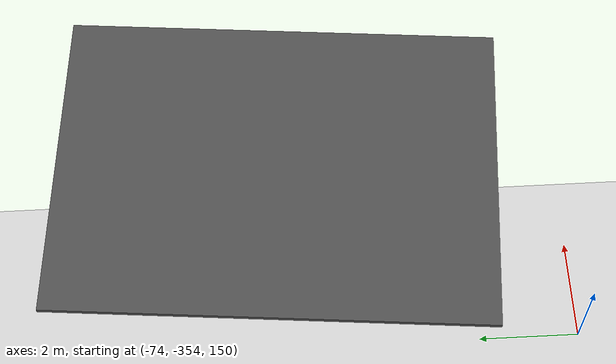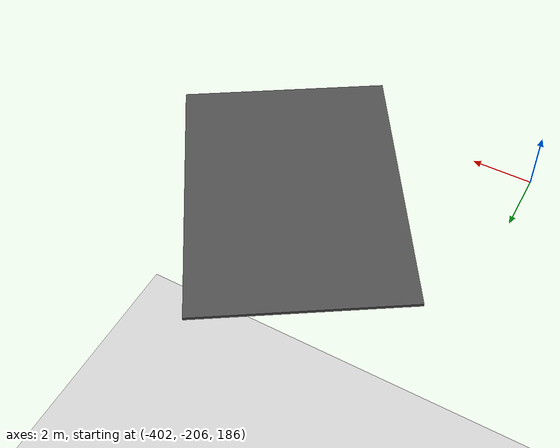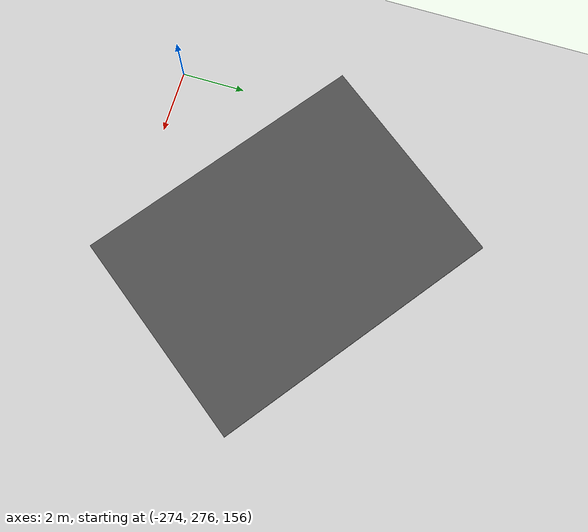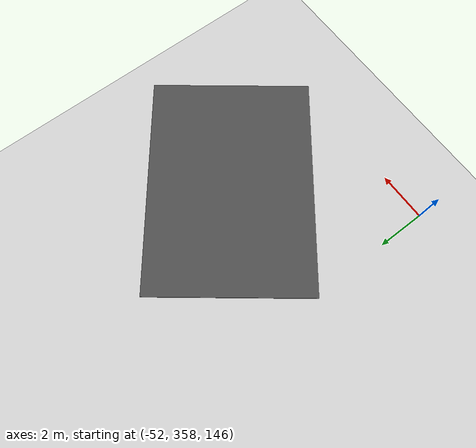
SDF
<sdf version="1.7">
 <world name="default">
  <light name="sun" type="directional">
   <pose>0 0 10 0 -0 0</pose>
   <diffuse>0.8 0.8 0.8 1</diffuse>
   <specular>0.2 0.2 0.2 1</specular>
   <attenuation>
    <range>1000</range>
    <constant>0.9</constant>
    <linear>0.01</linear>
    <quadratic>0.001</quadratic>
   </attenuation>
   <direction>-0.5 0.1 -0.9</direction>
   <spot><inner_angle>0</inner_angle><outer_angle>0</outer_angle><falloff>0</falloff></spot>
  </light>
  <model name="ground_plane">
   <static>1</static>
   <link name="link">
    <collision name="collision">
     <geometry><plane><normal>0 0 1</normal><size>100 100</size></plane></geometry>
     <surface>
      <contact><collide_bitmask>65535</collide_bitmask></contact>
      <friction><ode><mu>100</mu><mu2>50</mu2></ode></friction>
     </surface>
    </collision>
    <visual name="visual">
     <cast_shadows>0</cast_shadows>
     <geometry><plane><normal>0 0 1</normal><size>100 100</size></plane></geometry>
     <material>
      <script><uri>file://media/materials/scripts/gazebo.material</uri><name>Gazebo/Grey</name></script>
     </material>
    </visual>
   </link>
  </model>
  <gravity>0 0 -9.8</gravity>
  <magnetic_field>6e-06 2.3e-05 -4.2e-05</magnetic_field>
  <atmosphere type="adiabatic"/>
  <physics type="ode">
   <max_step_size>0.001</max_step_size>
   <real_time_factor>1</real_time_factor>
   <real_time_update_rate>1000</real_time_update_rate>
  </physics>
  <scene><ambient>0.4 0.4 0.4 1</ambient><background>0.7 0.7 0.7 1</background><shadows>1</shadows></scene>
  <audio><device>default</device></audio>
  <spherical_coordinates>
   <surface_model>EARTH_WGS84</surface_model>
   <latitude_deg>0</latitude_deg>
   <longitude_deg>0</longitude_deg>
   <elevation>0</elevation>
   <heading_deg>0</heading_deg>
  </spherical_coordinates>
  <model name="asphalt_plane">
   <static>1</static>
   <link name="link">
    <collision name="collision"><geometry><box><size>6.83714 9.26478 0.1</size></box></geometry></collision>
    <visual name="visual">
     <cast_shadows>0</cast_shadows>
     <geometry><box><size>6.83714 9.26478 0.1</size></box></geometry>
     <material>
      <script>
       <uri>model://asphalt_plane/materials/scripts</uri>
       <uri>model://asphalt_plane/materials/textures</uri>
       <name>vrc/asphalt</name>
      </script>
     </material>
    </visual>
   </link>
   <pose>-395.691 -201.158 187 0 -0 0.569301</pose>
  </model>
  <model name="asphalt_plane_clone">
   <static>1</static>
   <link name="link">
    <collision name="collision"><geometry><box><size>6.83714 9.26477 0.1</size></box></geometry></collision>
    <visual name="visual">
     <cast_shadows>0</cast_shadows>
     <geometry><box><size>6.83714 9.26477 0.1</size></box></geometry>
     <material>
      <script>
       <uri>model://asphalt_plane/materials/scripts</uri>
       <uri>model://asphalt_plane/materials/textures</uri>
       <name>vrc/asphalt</name>
      </script>
     </material>
    </visual>
   </link>
   <pose>-70.1947 -348.082 150.669 0 0 -0.091153</pose>
  </model>
  <model name="asphalt_plane_clone_0">
   <static>1</static>
   <link name="link">
    <collision name="collision"><geometry><box><size>6.83714 9.26477 0.1</size></box></geometry></collision>
    <visual name="visual">
     <cast_shadows>0</cast_shadows>
     <geometry><box><size>6.83714 9.26477 0.1</size></box></geometry>
     <material>
      <script>
       <uri>model://asphalt_plane/materials/scripts</uri>
       <uri>model://asphalt_plane/materials/textures</uri>
       <name>vrc/asphalt</name>
      </script>
     </material>
    </visual>
   </link>
   <pose>-269.183 280.878 156.949 0 -0 0.92253</pose>
  </model>
  <model name="asphalt_plane_clone_0_clone">
   <static>1</static>
   <link name="link">
    <collision name="collision"><geometry><box><size>6.83714 9.26477 0.1</size></box></geometry></collision>
    <visual name="visual">
     <cast_shadows>0</cast_shadows>
     <geometry><box><size>6.83714 9.26477 0.1</size></box></geometry>
     <material>
      <script>
       <uri>model://asphalt_plane/materials/scripts</uri>
       <uri>model://asphalt_plane/materials/textures</uri>
       <name>vrc/asphalt</name>
      </script>
     </material>
    </visual>
   </link>
   <pose>-530.913 439.415 150.415 0 -0 0.92253</pose>
  </model>
  <model name="asphalt_plane_clone_0_clone_clone">
   <static>1</static>
   <link name="link">
    <collision name="collision"><geometry><box><size>6.83714 9.26477 0.1</size></box></geometry></collision>
    <visual name="visual">
     <cast_shadows>0</cast_shadows>
     <geometry><box><size>6.83714 9.26477 0.1</size></box></geometry>
     <material>
      <script>
       <uri>model://asphalt_plane/materials/scripts</uri>
       <uri>model://asphalt_plane/materials/textures</uri>
       <name>vrc/asphalt</name>
      </script>
     </material>
    </visual>
   </link>
   <pose>-46.3418 363.068 145.511 0 -0 0.92253</pose>
  </model>
  <model name="asphalt_plane_clone_0_clone_clone_clone">
   <static>1</static>
   <link name="link">
    <collision name="collision"><geometry><box><size>6.83714 9.26477 0.1</size></box></geometry></collision>
    <visual name="visual">
     <cast_shadows>0</cast_shadows>
     <geometry><box><size>6.83714 9.26477 0.1</size></box></geometry>
     <material>
      <script>
       <uri>model://asphalt_plane/materials/scripts</uri>
       <uri>model://asphalt_plane/materials/textures</uri>
       <name>vrc/asphalt</name>
      </script>
     </material>
    </visual>
   </link>
   <pose>619.862 259.081 196.707 0 -0 2.00254</pose>
  </model>
 </world>
</sdf>
